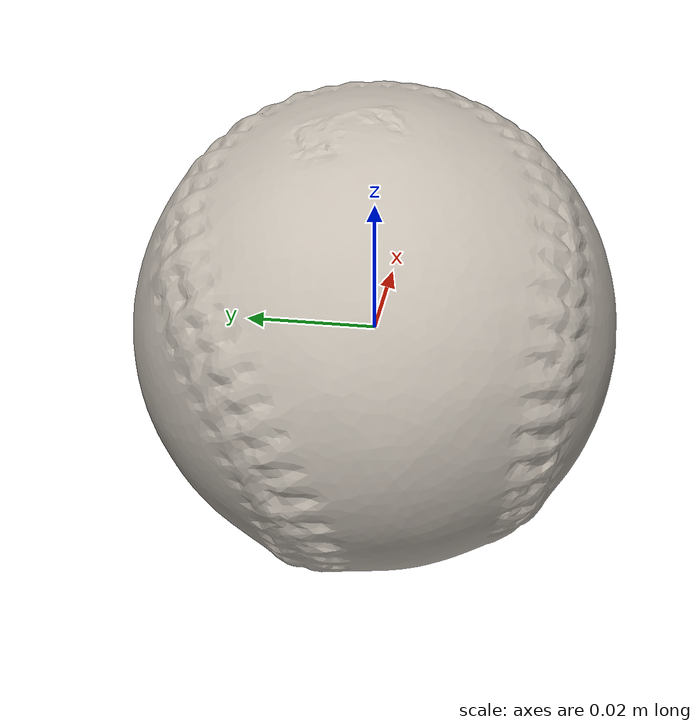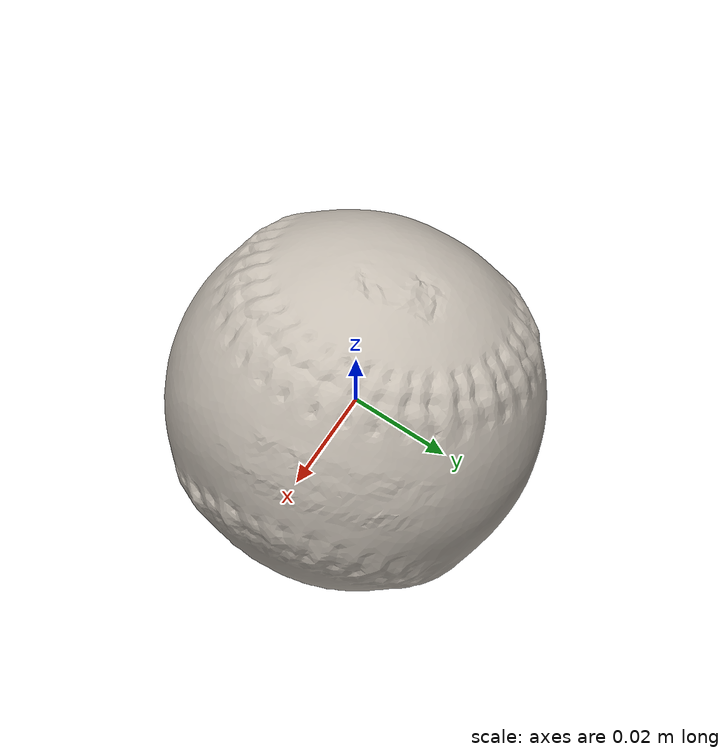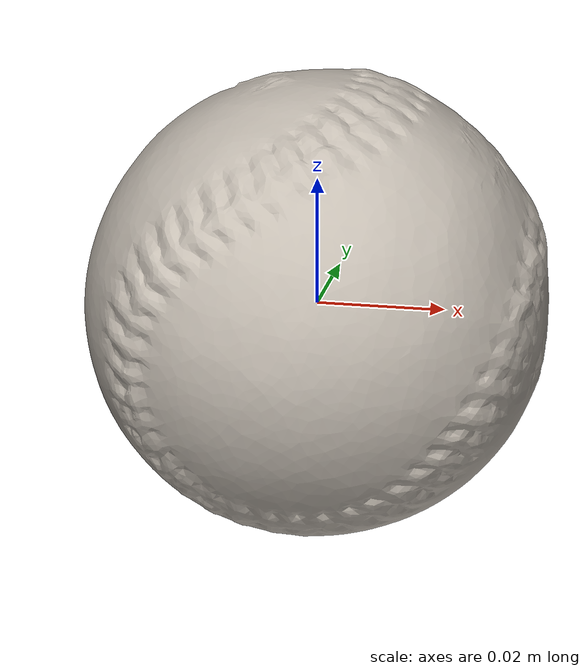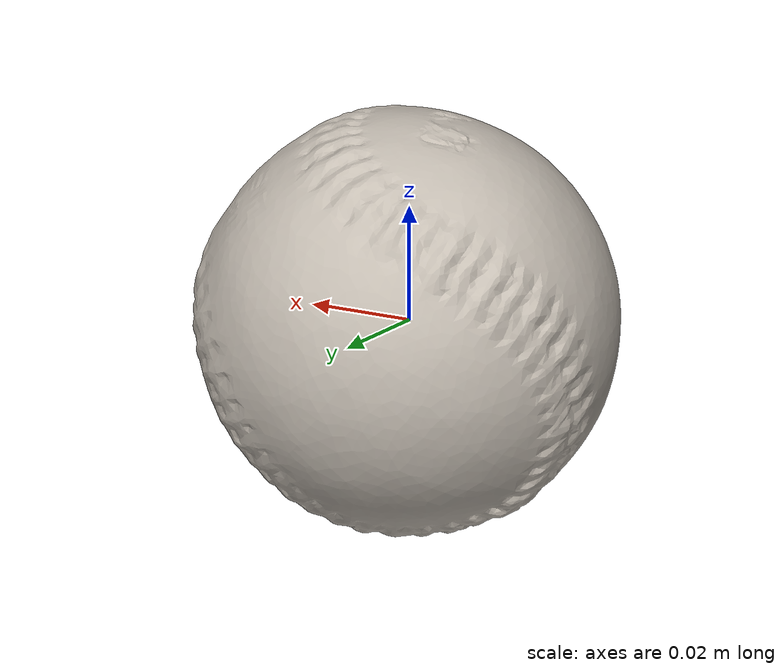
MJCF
<mujoco model="baseball">
  <compiler angle="radian" />

  <asset>
    <mesh name="baseball_visual_mesh" file="baseball/textured.obj" />
    <mesh name="baseball_collision_mesh_0" file="baseball/textured_coacd_0.stl" />
    <texture name="baseball_texture" type="2d" file="baseball/texture_map.png" />
    <material name="baseball_material" texture="baseball_texture" />
  </asset>

  <worldbody>
    <body name="baseball" pos="0 0 0" euler="0 0 0">
      <freejoint name="baseball_joint" />
      <geom name="baseball_visual_geom" type="mesh" mesh="baseball_visual_mesh" material="baseball_material" pos="-0.0 0.0 0.0" euler="0 0 0" contype="0" conaffinity="0" group="0" />
      <geom name="baseball_collision_geom_0" type="mesh" mesh="baseball_collision_mesh_0" pos="-0.0 0.0 0.0" euler="0 0 0" contype="1" conaffinity="1" group="3" />
      <inertial pos="0 0 0" euler="0 0 0" mass="0.138" diaginertia="0.001 0.001 0.001" />
    </body>
  </worldbody>
</mujoco>
